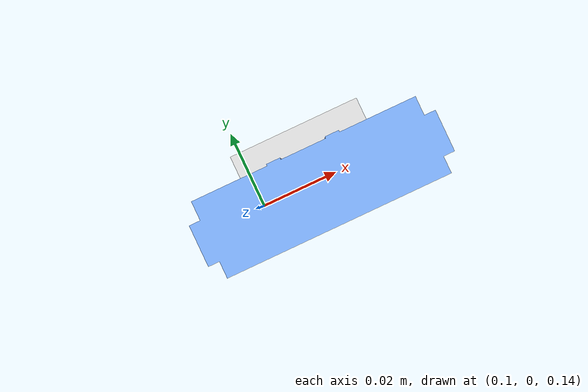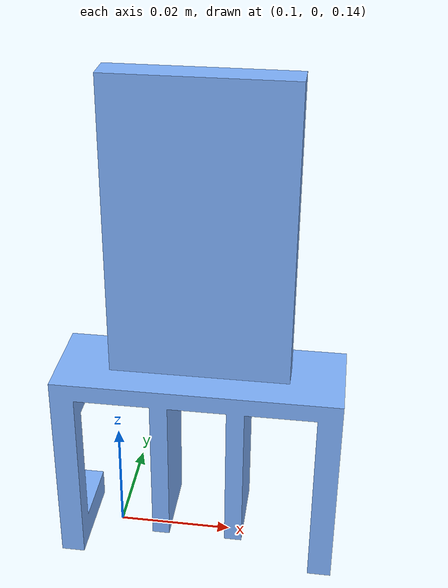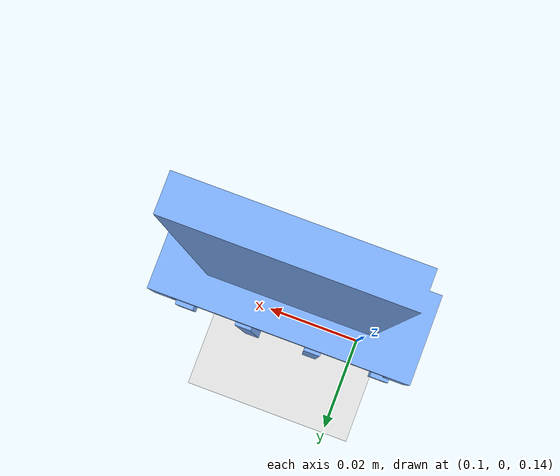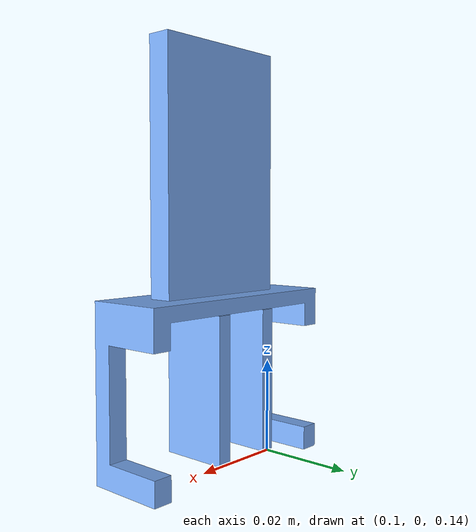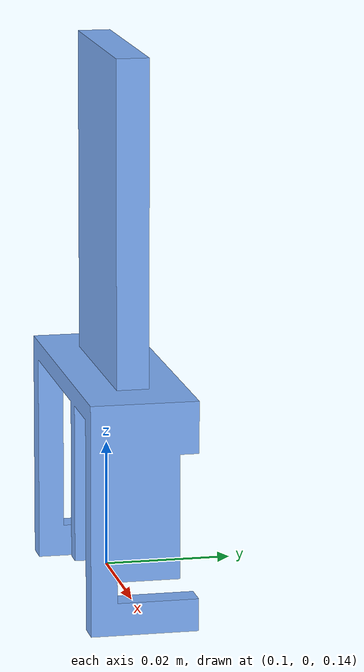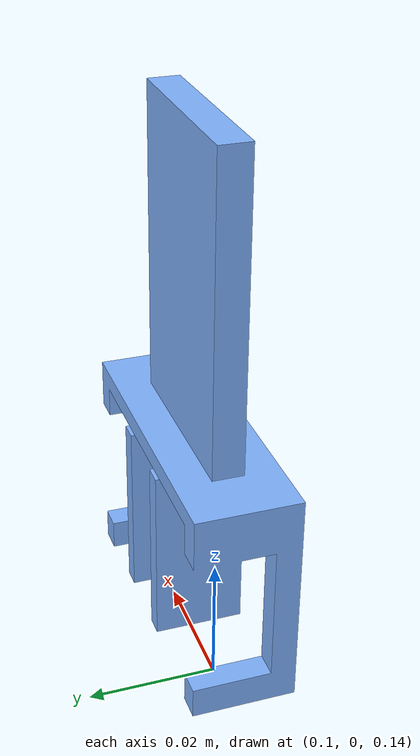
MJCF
<?xml version="1.0" ?>
<mujoco model="FullAssembly_v7">
  <default>
    <mesh scale="0.001 0.001 0.001"/>
    <geom rgba="0.5 0.7 1.0 1"/>
    <joint damping="1"/>
    <position kp="14"/>
  </default>
  <asset>
    <mesh file="meshes/body_v6_1.stl" name="body_v6_1_mesh"/>
  </asset>
  <actuator/>
  <worldbody>
    <geom type="plane" size="1 1 0.1" rgba="0.9 0.9 0.9 1"/>
    <light mode="targetbodycom" target="body" diffuse=".8 .8 .8" specular="0.3 0.3 0.3" pos="0 -6 4" cutoff="30"/>
    <body name="body" pos="0 0 .17355">
      <freejoint name="root"/>
      <geom type="mesh" mesh="body_v6_1_mesh"/>
    </body>
  </worldbody>
</mujoco>
